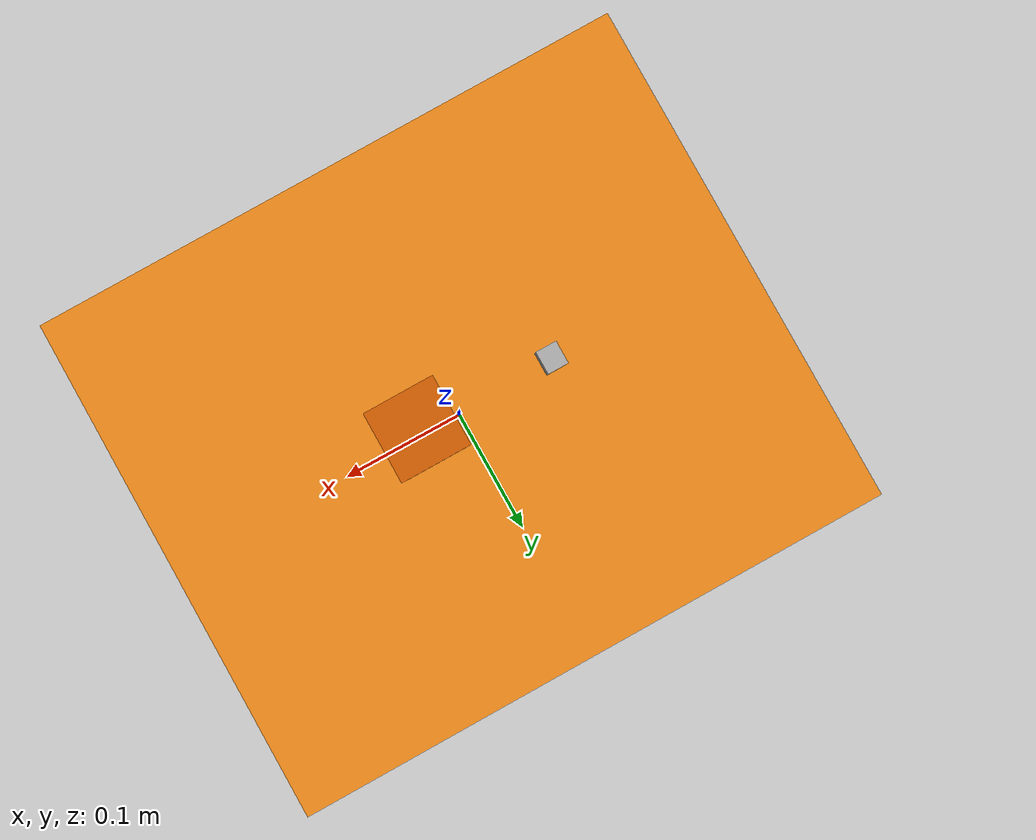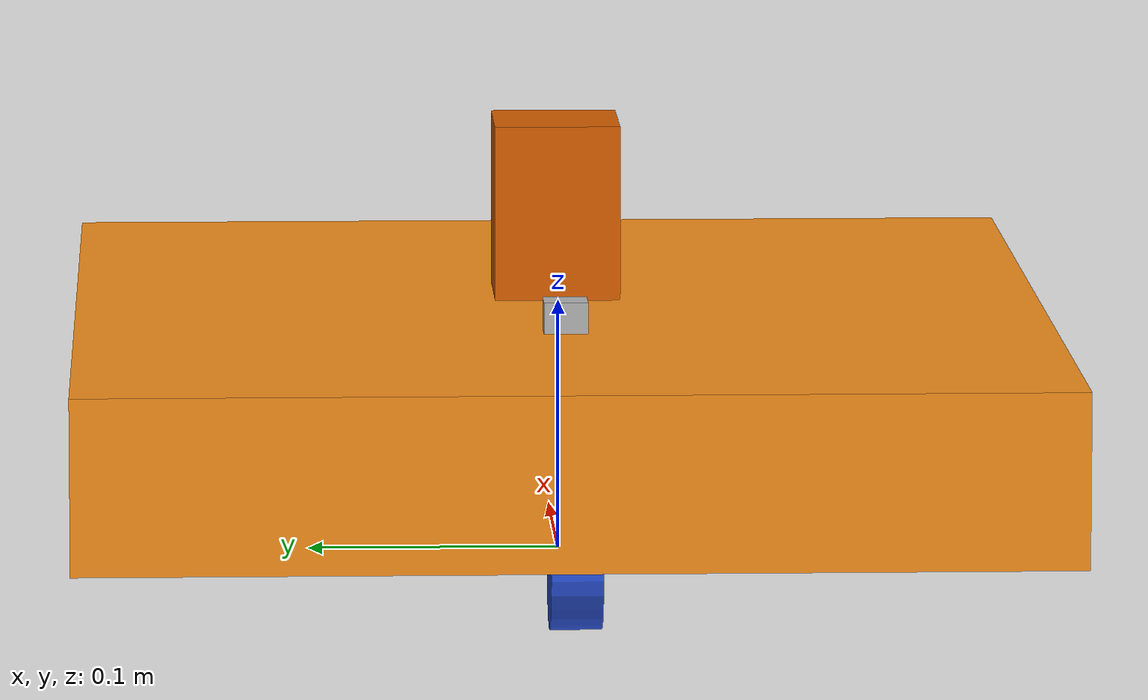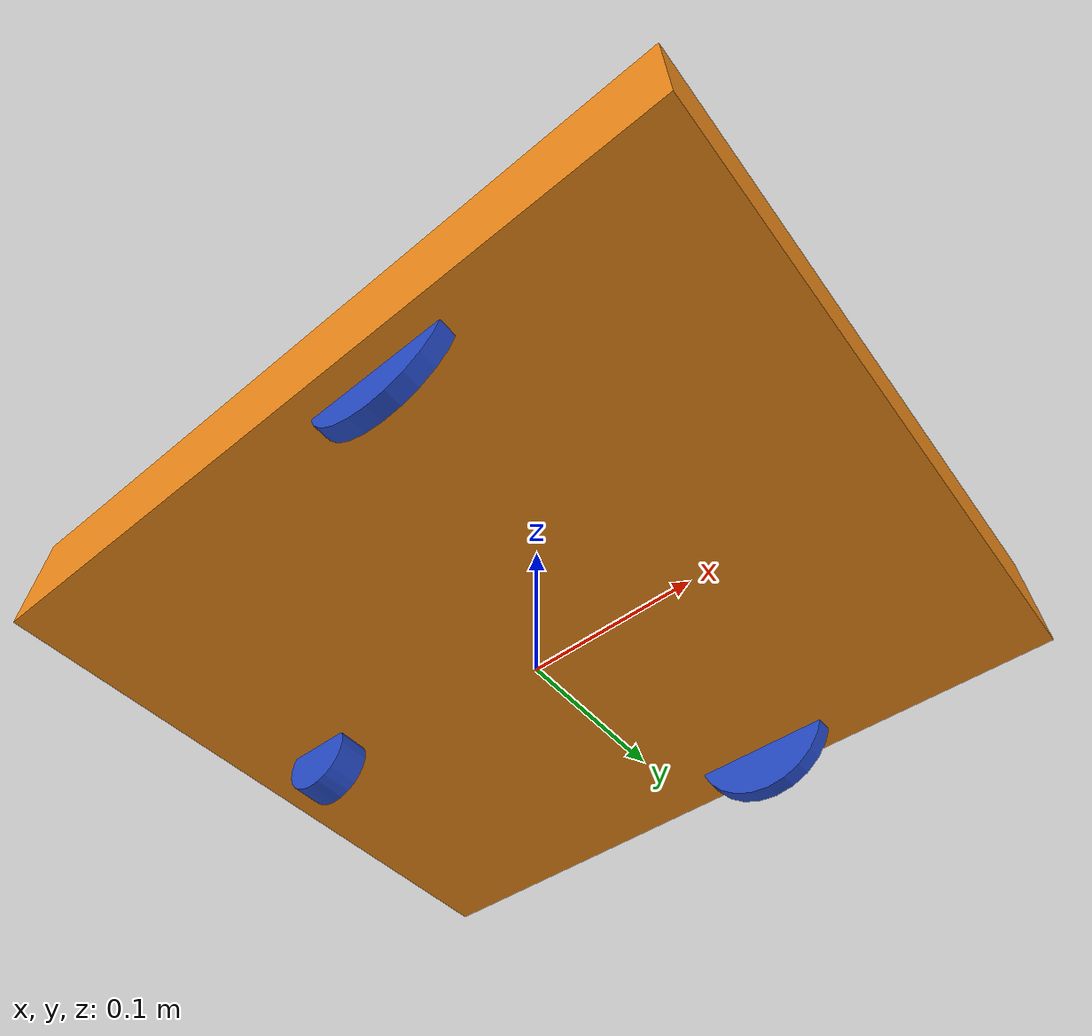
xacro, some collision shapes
<?xml version="1.0"?>
<robot name="magabot" xmlns:xacro="http://www.ros.org/wiki/xacro">

  <!-- Constants with robot dimensions -->
  <xacro:property name="PI" value="3.14159"/>
  <xacro:property name="width" value="0.3846"/> <!-- Width of the base chassis -->
  <xacro:property name="length" value="0.451"/> <!-- Length of the base chassis -->
  <xacro:property name="height" value="0.06826"/> <!-- Height of the base chassis -->
  <xacro:property name="wheelRadius" value="0.045"/> <!-- Radius of motorized wheels -->
  <xacro:property name="wheelWidth" value="0.0108"/> <!-- Width of motorized wheels -->
  <xacro:property name="wheelSep" value="0.345"/> <!-- Distance between wheels, for Differential Drive -->
  <xacro:property name="casterRadius" value="0.0225"/> <!-- Radius of non-motorized wheel -->
  <xacro:property name="casterWidth" value="0.020"/> <!-- Width of non-motorized wheel -->

  <!-- Magabot TFs -->
  <xacro:macro name="base_tf"> <origin xyz="0 0 ${height/2+0.0307}" rpy="0 0 -${PI/2}"/> </xacro:macro>
  <xacro:macro name="wheel_tf" params="reflect"> <origin xyz="${reflect*.1725} .0455 ${-height/2+0.0143}" rpy="${PI/2} 0 ${PI/2}"/> </xacro:macro>
  <xacro:macro name="caster_tf"> <origin xyz="0 -0.169 ${-height/2-0.0092}" rpy="${PI/2} 0 ${PI/2}"/> </xacro:macro>

  <!-- Sensor TFs -->
  <xacro:macro name="hokuyo_tf"> <origin xyz="0 0.0305 ${height/2+0.07}" rpy="0 0 ${PI/2}"/> </xacro:macro>
	<xacro:macro name="wiimote_tf"> <origin xyz="0 -0.0721 ${height/2}" rpy="0 0 0"/> </xacro:macro>

  <!-- Import Gazebo plugins -->
  <xacro:include filename="$(find mag_description)/urdf/magabot.gazebo" />

	<!-- Import Parts -->
	<xacro:include filename="$(find mag_description)/urdf/parts/chassis.xacro" />
	<xacro:include filename="$(find mag_description)/urdf/parts/wheel.xacro" />
	<xacro:include filename="$(find mag_description)/urdf/parts/caster.xacro" />

  <!-- Import Sensors -->
  <xacro:include filename="$(find mag_description)/urdf/sensors/hokuyo_laser.xacro" />
  <xacro:include filename="$(find mag_description)/urdf/sensors/microstrain.xacro" />

  <!-- Import Materials -->
  <xacro:include filename="$(find mag_description)/urdf/materials/materials.xacro" />

  <!-- ........... MAGABOT PARTS ........... -->

  <xacro:chassis width="${width}" length="${length}" height="${height}">
  	<xacro:base_tf/>
  </xacro:chassis>

  <xacro:wheel name="leftwheel" wheelWidth="${wheelWidth}" wheelRadius="${wheelRadius}">
  	<xacro:wheel_tf reflect="1" />
  </xacro:wheel>

  <xacro:wheel name="rightwheel" wheelWidth="${wheelWidth}" wheelRadius="${wheelRadius}">
  	<xacro:wheel_tf reflect="-1" />
  </xacro:wheel>

  <xacro:caster casterRadius="${casterRadius}" casterWidth="${casterWidth}">
  	<xacro:caster_tf />
  </xacro:caster>

  <!-- ....... SENSORS ....... -->

  <xacro:hokuyo_laser parent="base_link" topic="laser_scan">
  	<xacro:hokuyo_tf/>
  </xacro:hokuyo_laser>

  <xacro:microstrain parent="base_link" topic="imu_data">
  	<xacro:wiimote_tf/>
  </xacro:microstrain>

  <!-- ....... GAZEBO PLUGINS ....... -->

  <xacro:plugins_gazebo topic="odom_combined" wheelSep="${wheelSep}" wheelRad="${wheelRadius}"/>

</robot>

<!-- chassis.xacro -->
<robot name="magabot" xmlns:xacro="http://www.ros.org/wiki/xacro">

  <xacro:macro name="chassis" params="width length height *origin">

		<!-- URDF description -->

		<link name="base_footprint"/> <!-- Link to apply the base_footprint to base_link TF -->

		<link name="base_link"> <!-- Main chassis link -->
			<visual>
				<origin xyz="0 0 0"/>
				<geometry>
					<box size="${width} ${length} ${height}"/>
				</geometry>
				<material name="orange"/>
			</visual>

			<collision>
				<origin xyz="0 0 0"/>
				<geometry>
					<box size="${width} ${length} ${height}"/>
				</geometry>
			</collision>

			<inertial>
				<origin xyz="0 0 0"/>
				<mass value="2.25"/>
				<inertia ixx="0.02860811" ixy="0.0" ixz="0.0" iyy="0.065872155" iyz="0.0" izz="0.03901133"/>
			</inertial>
		</link>

		<!-- Joint -->

		<joint name="footprint_link" type="fixed">
			<parent link="base_footprint"/>
			<child link="base_link"/>
			<axis xyz="1 0 0"/>
		  <insert_block name="origin" />
		</joint>

		<!-- Gazebo elements -->

		<gazebo reference="base_footprint"/>

		<gazebo reference="base_link">
		  <material>Gazebo/Orange</material>
		</gazebo>

  </xacro:macro>
</robot>

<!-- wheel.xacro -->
<robot name="magabot" xmlns:xacro="http://www.ros.org/wiki/xacro">

  <xacro:macro name="wheel" params="name wheelWidth wheelRadius *origin">

		<!-- URDF description -->

  	<link name="${name}"> <!-- Motorized wheel link -->
			<visual>
				<geometry>
					<cylinder length="${wheelWidth}" radius="${wheelRadius}"/>
				</geometry>
				<material name="blue"/>
			</visual>

			<collision>
				<geometry>
					<cylinder length="${wheelWidth}" radius="${wheelRadius}"/>
				</geometry>
			</collision>

			<inertial>
				<mass value="0.05"/>
				<inertia ixx="0.000025313" ixy="0.0" ixz="0.0" iyy="0.000025313" iyz="0.0" izz="0.000050625"/>
			</inertial>
		</link>

		<!-- Joint -->

		<joint name="base_${name}" type="continuous">
		  <parent link="base_link"/>
		  <child link="${name}"/>
		  <axis xyz="0 0 -1"/>
		  <insert_block name="origin" />
		</joint>

		<!-- Transmission -->

		<transmission name="${name}Trans">
		  <type>transmission_interface/SimpleTransmission</type>
		  <joint name="base_${name}"/>
		  <actuator name="${name}Motor">
		    <hardwareInterface>EffortJointInterface</hardwareInterface>
		    <mechanicalReduction>1</mechanicalReduction>
		  </actuator>
		</transmission>

		<!-- Gazebo elements -->

		<gazebo reference="${name}">
		  <mu1>0.9</mu1>
		  <mu2>0.9</mu2>
		  <material>Gazebo/Blue</material>
		</gazebo>
  </xacro:macro>

</robot>

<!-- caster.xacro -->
<robot name="magabot" xmlns:xacro="http://www.ros.org/wiki/xacro">

  <xacro:macro name="caster" params="casterWidth casterRadius *origin">

		<!-- URDF description -->

		<link name="caster"> <!-- Caster link -->
			<visual>
				<geometry>
					<cylinder length="${casterWidth}" radius="${casterRadius}"/>
				</geometry>
				<material name="Blue"/>
			</visual>

			<collision>
				<geometry>
					<cylinder length="${casterWidth}" radius="${casterRadius}"/>
				</geometry>
			</collision>

			<inertial>
				<mass value="0.0625"/>
				<inertia ixx="0.00000791" ixy="0.0" ixz="0.0" iyy="0.00000791" iyz="0.0" izz="0.00001582"/>
			</inertial>
		</link>

		<!-- Joint -->

		<joint name="base_caster" type="continuous">
		  <parent link="base_link"/>
		  <child link="caster"/>
		  <axis xyz="0 0 -1"/>
		  <insert_block name="origin"/>
		</joint>

		<!-- Transmission -->

		<transmission name="casterTrans">
		  <type>transmission_interface/SimpleTransmission</type>
		  <joint name="base_caster"/>
		  <actuator name="casterMotor">
		    <hardwareInterface>EffortJointInterface</hardwareInterface>
		    <mechanicalReduction>1</mechanicalReduction>
		  </actuator>
		</transmission>

		<!-- Gazebo elements -->

		<gazebo reference="caster">
		  <mu1>0.2</mu1>
		  <mu2>0.2</mu2>
		  <material>Gazebo/Blue</material>
		</gazebo>

  </xacro:macro>
</robot>

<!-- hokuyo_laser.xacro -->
<robot xmlns:sensor="http://playerstage.sourceforge.net/gazebo/xmlschema/#sensor"
       xmlns:controller="http://playerstage.sourceforge.net/gazebo/xmlschema/#controller"
       xmlns:interface="http://playerstage.sourceforge.net/gazebo/xmlschema/#interface"
       xmlns:xacro="http://ros.org/wiki/xacro">

  <xacro:property name="laserWidth" value="0.05"/> <!-- Width of the base -->
  <xacro:property name="laserLength" value="0.05"/> <!-- Length of the base -->
  <xacro:property name="laserHeight" value="0.07"/> <!-- Height -->

	<!-- Inlude Gazebo element -->
  <xacro:include filename="$(find mag_description)/urdf/sensors/hokuyo_laser.gazebo.xacro" />

  <xacro:macro name="hokuyo_laser" params="parent *origin topic">
    <link name="hokuyo_base" type="laser">
		  <visual>
		  	<origin xyz="0 0 -${laserHeight/2}" />
		    <geometry>
					<mesh filename="package://mag_description/meshes/hokuyo_laser.dae"/>
		    </geometry>
		  </visual>

		  <collision>
		  	<origin xyz="0 0 -${laserHeight/2}" />
		    <geometry>
		      <box size="${laserWidth} ${laserLength} ${laserHeight}" />
		    </geometry>
		  </collision>

      <inertial>
		  	<origin xyz="0 0 -${laserHeight/4}" />
        <mass value="0.1" />
        <inertia ixx="0.0001" ixy="0" ixz="0" iyy="0.0001" iyz="0" izz="0.0001" />
      </inertial>
    </link>

    <joint name="hokuyo_joint" type="fixed">
      <parent link="${parent}"/>
      <child link="hokuyo_base"/>
      <axis xyz="0 1 0" />
      <insert_block name="origin" />
    </joint>

		<link name="hokuyo_link"/> <!-- Dummy link to correct the sensor in gazebo -->

		<joint name="laser_joint" type="fixed">
			<parent link="hokuyo_base"/>
			<child link="hokuyo_link"/>
			<axis xyz="0 1 0"/>
			<origin xyz="0 0 ${laserHeight/2-0.005}" rpy="0 0 0"/>
		</joint>

	  <!-- Gazebo elements -->
	  <xacro:hokuyo_laser_gazebo topic="${topic}" laserHeight="${laserHeight}"/>
  </xacro:macro>

</robot>

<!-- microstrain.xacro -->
<robot xmlns:sensor="http://playerstage.sourceforge.net/gazebo/xmlschema/#sensor"
				xmlns:controller="http://playerstage.sourceforge.net/gazebo/xmlschema/#controller"
				xmlns:interface="http://playerstage.sourceforge.net/gazebo/xmlschema/#interface"
				xmlns:xacro="http://ros.org/wiki/xacro">

  <xacro:property name="imuWidth" value="0.0173"/> <!-- Width of the base -->
  <xacro:property name="imuLength" value="0.01585"/> <!-- Length of the base -->
  <xacro:property name="imuHeight" value="0.01241"/> <!-- Height -->

	<!-- Include Gazebo element -->
	<xacro:include filename="$(find mag_description)/urdf/sensors/microstrain.gazebo.xacro" />

	<xacro:macro name="microstrain" params="parent *origin topic">
		<link name="microstrain_link">
		  <visual>
		    <origin xyz="0 0 ${imuHeight/2}"/>
		    <geometry>
		      <box size="${imuWidth} ${imuLength} ${imuHeight}" />
		    </geometry>
		  </visual>

		  <collision>
		    <origin xyz="0 0 ${imuHeight/2}"/>
		    <geometry>
		      <box size="${imuWidth} ${imuLength} ${imuHeight}" />
		    </geometry>
		  </collision>

			<inertial>
		    <origin xyz="0 0 ${imuHeight/2}"/>
				<mass value="0.01" />
				<inertia ixx="0.0001" ixy="0" ixz="0" iyy="0.0001" iyz="0" izz="0.0001" />
			</inertial>
		</link>

		<joint name="microstrain_joint" type="fixed">
			<axis xyz="0 1 0" />
			<insert_block name="origin" />
			<parent link="${parent}"/>
			<child link="microstrain_link"/>
		</joint>

		<!-- Gazebo element -->
		<xacro:microstrain_gazebo topic="${topic}"/>
	</xacro:macro>

</robot>

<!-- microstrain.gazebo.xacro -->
<robot xmlns:controller="http://playerstage.sourceforge.net/gazebo/xmlschema/#controller"
       xmlns:interface="http://playerstage.sourceforge.net/gazebo/xmlschema/#interface"
       xmlns:xacro="http://ros.org/wiki/xacro">

  <xacro:property name="PI" value="3.14159"/>

  <xacro:macro name="microstrain_gazebo" params="topic">
    <gazebo>
      <plugin name="imu_controller" filename="libgazebo_ros_imu.so">
        <alwaysOn>true</alwaysOn>
        <updateRate>80</updateRate>

        <bodyName>microstrain_link</bodyName>
        <topicName>${topic}</topicName>
        <serviceName>/default_imu</serviceName>

        <gaussianNoise>0.0000000289</gaussianNoise>

        <xyzOffset>0 0 0</xyzOffset>
        <rpyOffset>0 0 0</rpyOffset>
      </plugin>
    </gazebo>
  </xacro:macro>

</robot>
